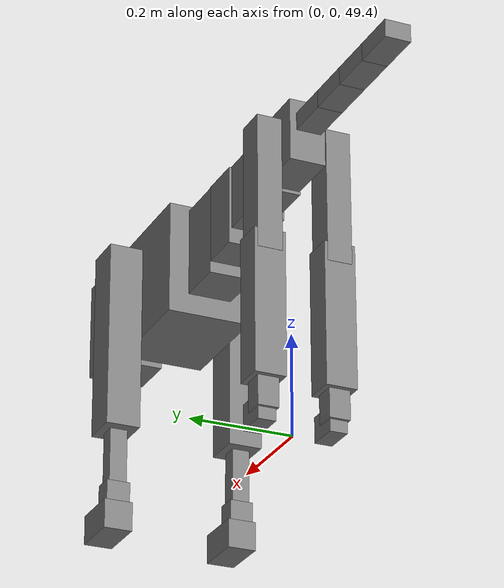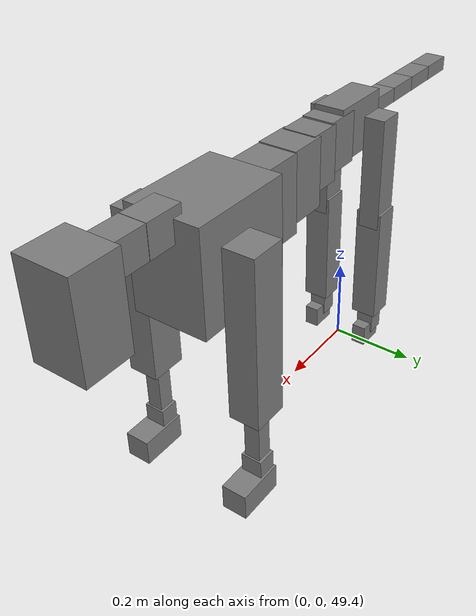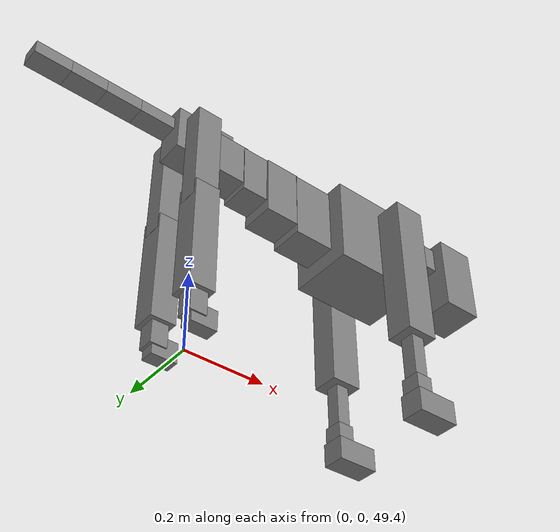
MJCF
<mujoco model="dog">

    <default>
        <joint armature="0.02" stiffness="1" damping="0.2" limited="true"/>
        <geom condim="3" friction="1 0.05 0.05" margin="0.01"/>
        <motor ctrllimited="true" ctrlrange="-1.0 1.0" forcelimited="true" gear="50"/>
    </default>

    <compiler inertiafromgeom="true" angle="radian"/>

    <option timestep="0.016" iterations="50" tolerance="1e-10" solver="Newton" jacobian="dense" cone="pyramidal"/>

    <size nconmax="20000" njmax="60000" nstack="5000000"/>
    <visual>
        <map force="0.1" zfar="30"/>
        <rgba haze="0.15 0.25 0.35 1"/>
        <quality shadowsize="2048"/>
        <global offwidth="800" offheight="800"/>
    </visual>

    <asset>
        <texture type="skybox" builtin="gradient" rgb1="0.3 0.5 0.7" rgb2="0 0 0" width="512" height="512"/>
        <texture name="texplane" type="2d" builtin="checker" rgb1=".2 .3 .4" rgb2=".1 0.15 0.2" width="512" height="512"
                 mark="cross" markrgb=".8 .8 .8"/>
        <texture name="texgeom" type="cube" builtin="flat" mark="cross" width="127" height="1278" rgb1="0.8 0.6 0.4"
                 rgb2="0.8 0.6 0.4" markrgb="1 1 1" random="0.01"/>

        <material name="matplane" reflectance="0.3" texture="texplane" texrepeat="1 1" texuniform="true"/>
        <material name="matgeom" texture="texgeom" texuniform="true" rgba="0.8 0.6 .4 1"/>
    </asset>

    <worldbody>
        <geom name="floor" pos="0 0 0" size="0 0 .25" type="plane" material="matplane" condim="3"/>

        <light directional="false" diffuse=".2 .2 .2" specular="0 0 0" pos="0 0 5" dir="0 0 -1" castshadow="false"/>
        <light mode="targetbodycom" target="torso" directional="false" diffuse=".8 .8 .8" specular="0.3 0.3 0.3"
               pos="0 0 4.0" dir="0 0 -1"/>

        <body name="root" pos="0 0 50">
            <freejoint name="root_1"/>
            <geom type="box" pos="0 0 -0.02" size="0.0774  0.0358  0.063" density="2030"/>

            <body name="spine1" pos="0.054 0 0">
                <joint name="spine1_y" axis="0 1 0" range="0 0.7" limited="true"/>
                <geom type="box" pos="0.02375 0 -0.03" size="0.04375  0.0375  0.05985" density="2030"/>

                <body name="spine2" pos="0.0612 0 0">
                    <joint name="spine2_y" axis="0 1 0" range="-0.15 0.15" limited="true"/>
                    <geom type="box" pos="0.03555  0  -0.04" size="0.04055  0.039  0.06615" density="2030"/>

                    <body name="spine3" pos="0.0730 0 0">
                        <joint name="spine3_y" axis="0 1 0" range="-0.15 0.15" limited="true"/>
                        <geom type="box" pos="0.03555  0  -0.057" size="0.04555  0.0445  0.081" density="2030"/>

                        <body name="spine4" pos="0.0780 0 0">
                            <joint name="spine4_y" axis="0 1 0" range="-0.15 0.15" limited="true"/>
                            <geom type="box" pos="0.05265  0  -0.07" size="0.05265  0.045  0.09135" density="2030"/>

                            <body name="torso" pos="0.1082 0 0">
                                <joint name="torso_y" axis="0 1 0" range="-0.15 0.15" limited="true"/>
                                <geom type="box" pos="0.11925  0  -0.085" size="0.11925  0.085  0.11745"
                                      density="2030"/>

                                <body name="neck1" pos="0.2160  0   0.0180">
                                    <joint name="neck1_y" axis="0 1 0" range="-1.2  -1" limited="true"/>
                                    <geom type="box" pos="0.0423  0  0" size="0.0423  0.03  0.036" density="2325"/>

                                    <body name="neck2" pos="0.0853  0  0">
                                        <joint name="neck2_y" axis="0 1 0" range="0.1  0" limited="true"/>
                                        <geom type="box" pos="0.0423  0  0" size="0.0423  0.03  0.036" density="2325"/>

                                        <body name="head" pos="0.0853  0  0">
                                            <joint name="head_y" axis="0 1 0" range="-0.3  -0.2" limited="true"/>
                                            <geom type="box" pos="0.0531  0  -0.055" size="0.0531  0.06  0.1044"
                                                  density="4030"/>

                                        </body>
                                    </body>
                                </body>

                                <body name="front_shoulder" pos="0.156  0   -0.0480">
                                    <joint name="front_shoulder_y" axis="0 1 0" range="-1 1.5" limited="true"/>
                                    <geom type="box" pos="0 0.13 -0.1669" size="0.0406  0.0347  0.1935" density="1158"/>
                                    <geom type="box" pos="0 -0.13 -0.1669" size="0.0406  0.0347  0.1935"
                                          density="1158"/>

                                    <body name="front_elbow" pos="0  0  -0.3338">
                                        <joint name="front_elbow_y" axis="0 1 0" range="-2 0" limited="true"/>
                                        <geom type="box" pos="0 0.13 -0.0749" size="0.0174  0.0178  0.0749"
                                              density="1081"/>
                                        <geom type="box" pos="0 -0.13 -0.0749" size="0.0174  0.0178  0.0749"
                                              density="1081"/>

                                        <body name="front_wrist" pos="0  0  -0.1498">
                                            <joint name="front_wrist_y" axis="0 1 0" range="-0.2 0" limited="true"/>
                                            <geom type="box" pos="0 0.13 -0.0215" size="0.0214  0.0238  0.0347"
                                                  density="1664"/>
                                            <geom type="box" pos="0 -0.13 -0.0215" size="0.0214  0.0238  0.0347"
                                                  density="1664"/>

                                            <body name="front_finger_end" pos="0  0  -0.0430">
                                                <joint name="front_finger_y" axis="0 1 0" range="-0.4 1"
                                                       limited="true"/>
                                                <geom type="box" pos="0.0287  0.13  -0.0145"
                                                      size="0.0527  0.0287  0.0295" density="1515"/>
                                                <geom type="box" pos="0.0287  -0.13  -0.0145"
                                                      size="0.0527  0.0287  0.0295" density="1515"/>

                                            </body>

                                        </body>
                                    </body>
                                </body>

                            </body>
                        </body>
                    </body>
                </body>
            </body>

            <body name="back_hip" pos="-0.03 0 -0.018">
                <joint name="back_hip_y" axis="0 1 0" range="-1.5 0.3" limited="true"/>
                <geom type="box" pos="0 0.07 -0.1132" size="0.0315  0.0247  0.1360" density="1154"/>
                <geom type="box" pos="0 -0.07 -0.1132" size="0.0315  0.0247  0.1360" density="1154"/>

                <body name="back_knee" pos="0  0  -0.2264">
                    <joint name="back_knee_y" axis="0 1 0" range="0 2.8" limited="true"/>
                    <geom type="box" pos="0 0.07 -0.1277" size="0.0312  0.0308  0.1432" density="1227"/>
                    <geom type="box" pos="0 -0.07 -0.1277" size="0.0312  0.0308  0.1432" density="1227"/>

                    <body name="back_ankle" pos="0  0  -0.2554">
                        <joint name="back_ankle_y" axis="0 1 0" range="-2.2 0" limited="true"/>
                        <geom type="box" pos="0 0.07 -0.0310" size="0.0207  0.0207  0.0422" density="1284"/>
                        <geom type="box" pos="0 -0.07 -0.0310" size="0.0207  0.0207  0.0422" density="1284"/>

                        <body name="back_toe_end" pos="0  0  -0.0619">
                            <joint name="back_toe_y" axis="0 1 0" range="-0.4 1" limited="true"/>
                            <geom type="box" pos="0.0173  0.07  -0.0101" size="0.0316  0.0173  0.0251" density="1515"/>
                            <geom type="box" pos="0.0173  -0.07  -0.0101" size="0.0316  0.0173  0.0251" density="1515"/>

                        </body>
                    </body>
                </body>
            </body>

            <body name="tail1" pos="-0.074 0 -0.006">
                <joint name="tail1_y" axis="0 1 0" range="-0.2 0.2" limited="true"/>
                <geom type="box" pos="-0.0536  0  0" size="0.045  0.025  0.0175" density="1587"/>

                <body name="tail2" pos="-0.09 0 0">
                    <joint name="tail2_y" axis="0 1 0" range="-0.2 0.2" limited="true"/>
                    <geom type="box" pos="-0.0536  0  0" size="0.045  0.025  0.0175" density="1587"/>

                    <body name="tail3" pos="-0.09 0 0">
                        <joint name="tail3_y" axis="0 1 0" range="-0.2 0.2" limited="true"/>
                        <geom type="box" pos="-0.0536  0  0" size="0.045  0.025  0.0175" density="1587"/>

                        <body name="tail4" pos="-0.09 0 0">
                            <joint name="tail4_y" axis="0 1 0" range="-0.2 0.2" limited="true"/>
                            <geom type="box" pos="-0.0536  0  0" size="0.045  0.025  0.0175" density="1587"/>

                        </body>
                    </body>
                </body>
            </body>
        </body>
    </worldbody>

    <actuator>
        <motor joint="spine1_y" forcerange="-150 150     "/>
        <motor joint="spine2_y" forcerange="-150 150     "/>
        <motor joint="spine3_y" forcerange="-150 150     "/>
        <motor joint="spine4_y" forcerange="-150 150     "/>
        <motor joint="torso_y" forcerange="-150 150     "/>
        <motor joint="neck1_y" forcerange="-100 100       "/>
        <motor joint="neck2_y" forcerange="-100 100       "/>
        <motor joint="head_y" forcerange="-150 150       "/>
        <motor joint="front_shoulder_y" forcerange="-171.77 159.75"/>
        <motor joint="front_elbow_y" forcerange="-108.70 120.83"/>
        <motor joint="front_wrist_y" forcerange="-66.41 123.99"/>
        <motor joint="front_finger_y" forcerange="-85.46 27.86"/>
        <motor joint="back_hip_y" forcerange="-206.65 323.23"/>
        <motor joint="back_knee_y" forcerange="-295.36 352.08"/>
        <motor joint="back_angle_y" forcerange="-127.54 104.26"/>
        <motor joint="back_toe_y" forcerange="-20.22 37.79"/>
        <motor joint="tail1_y" forcerange="-50 50     "/>
        <motor joint="tail2_y" forcerange="-50 50     "/>
        <motor joint="tail3_y" forcerange="-50 50     "/>
        <motor joint="tail4_y" forcerange="-50 50     "/>
    </actuator>
</mujoco>
